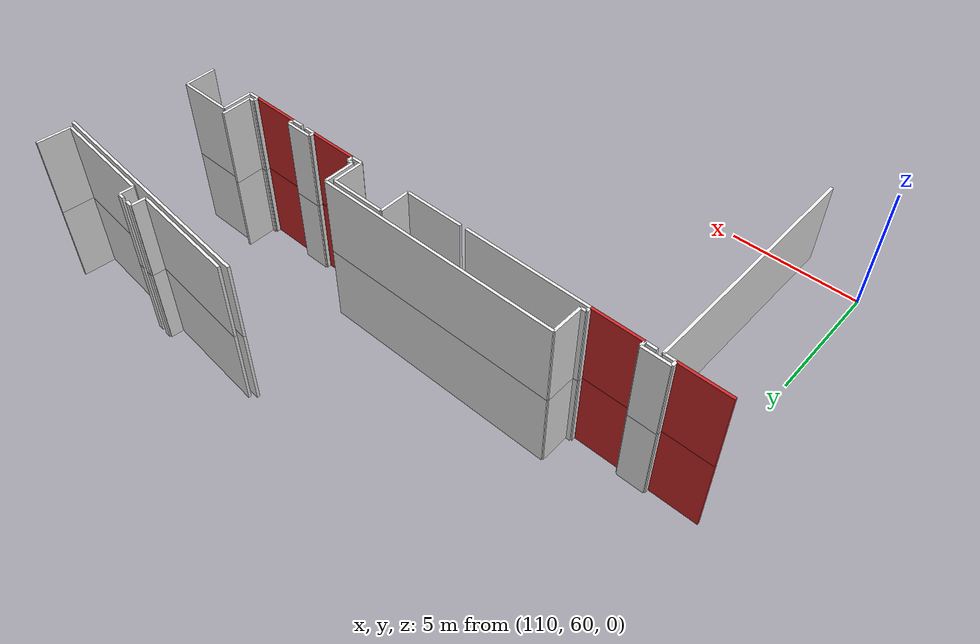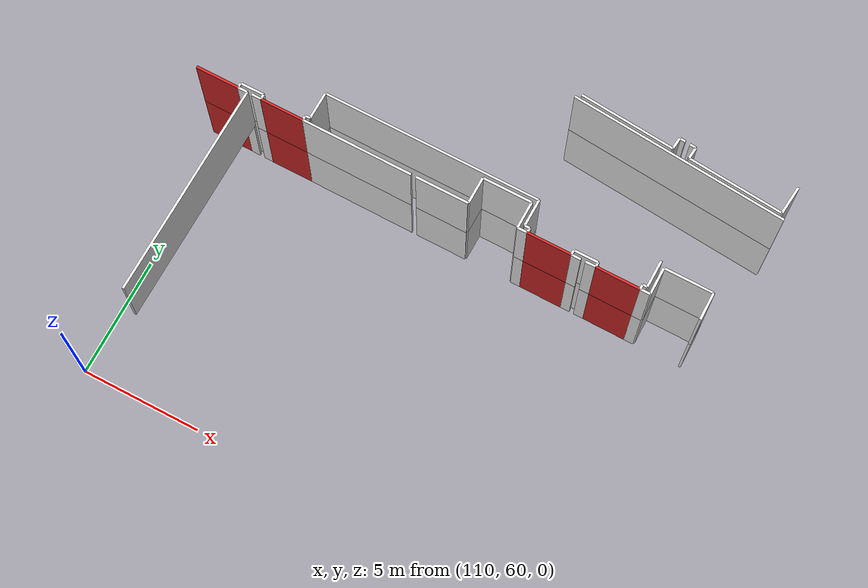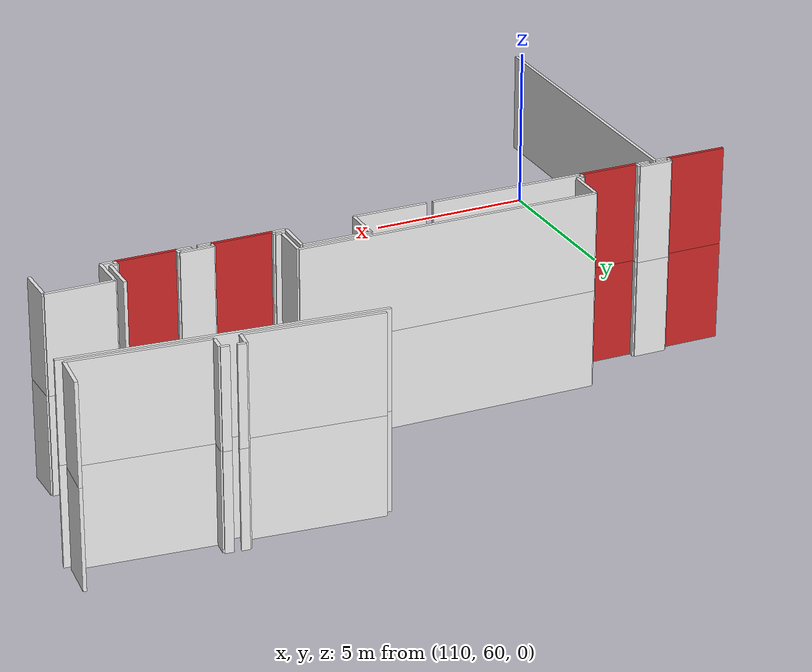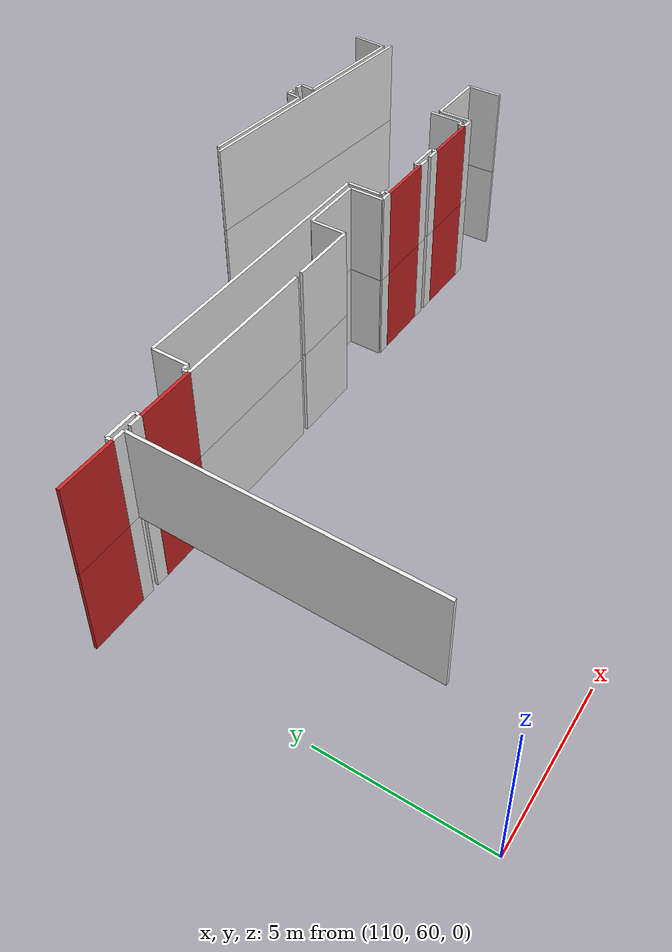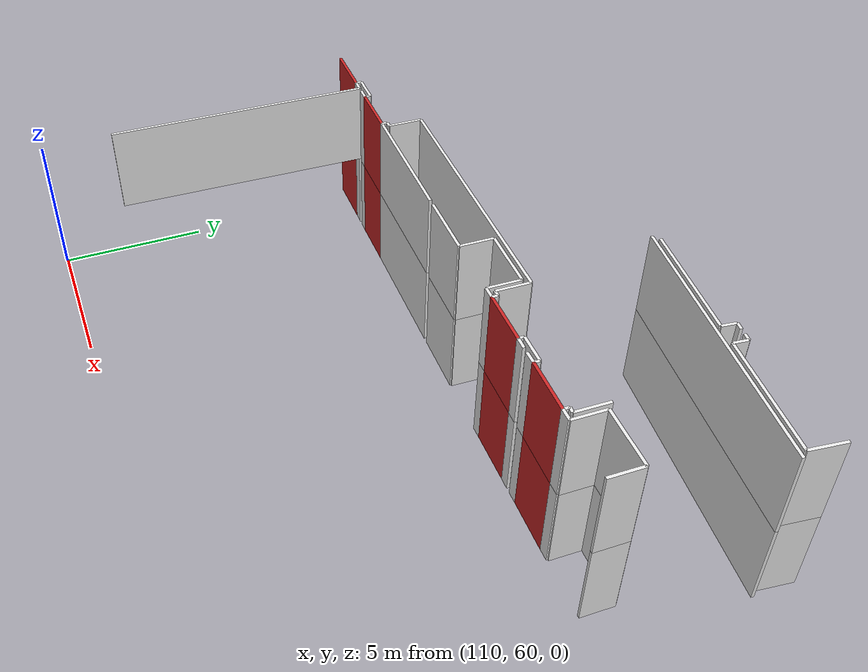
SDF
<sdf version="1.6">
 <world name="default">
  <model name="wall_127.1_71.0_1.5">
   <static>true</static>
   <pose>127.05000000001746 70.9550000000745 1.5 0 0 3.1249275297309125</pose>
   <link name="link">
    <visual name="visual">
     <geometry><box><size>1.8002499826340055 0.1 3</size></box></geometry>
     <material>
      <script><uri>file://media/materials/scripts/gazebo.material</uri><name>Gazebo/Red</name></script>
     </material>
    </visual>
    <collision name="collision"><geometry><box><size>1.8002499826340055 0.1 3</size></box></geometry></collision>
   </link>
  </model>
  <model name="wall_124.3_71.0_1.5">
   <static>true</static>
   <pose>124.26499999998487 70.98999999999069 1.5 0 0 3.1305433795001205</pose>
   <link name="link">
    <visual name="visual">
     <geometry><box><size>1.810110493862824 0.1 3</size></box></geometry>
     <material>
      <script><uri>file://media/materials/scripts/gazebo.material</uri><name>Gazebo/Red</name></script>
     </material>
    </visual>
    <collision name="collision"><geometry><box><size>1.810110493862824 0.1 3</size></box></geometry></collision>
   </link>
  </model>
  <model name="wall_113.0_71.1_1.5">
   <static>true</static>
   <pose>113.03500000000349 71.13000000012107 1.5 0 0 3.1305433795001205</pose>
   <link name="link">
    <visual name="visual">
     <geometry><box><size>1.810110493862824 0.1 3</size></box></geometry>
     <material>
      <script><uri>file://media/materials/scripts/gazebo.material</uri><name>Gazebo/Red</name></script>
     </material>
    </visual>
    <collision name="collision"><geometry><box><size>1.810110493862824 0.1 3</size></box></geometry></collision>
   </link>
  </model>
  <model name="wall_110.2_71.2_1.5">
   <static>true</static>
   <pose>110.23500000001513 71.17000000015832 1.5 0 0 3.1305433795001205</pose>
   <link name="link">
    <visual name="visual">
     <geometry><box><size>1.810110493862824 0.1 3</size></box></geometry>
     <material>
      <script><uri>file://media/materials/scripts/gazebo.material</uri><name>Gazebo/Red</name></script>
     </material>
    </visual>
    <collision name="collision"><geometry><box><size>1.810110493862824 0.1 3</size></box></geometry></collision>
   </link>
  </model>
  <model name="wall_127.1_71.0_4.5">
   <static>true</static>
   <pose>127.05000000001746 70.9550000000745 4.5 0 0 3.1249275297309125</pose>
   <link name="link">
    <visual name="visual">
     <geometry><box><size>1.8002499826340055 0.1 3</size></box></geometry>
     <material>
      <script><uri>file://media/materials/scripts/gazebo.material</uri><name>Gazebo/Red</name></script>
     </material>
    </visual>
    <collision name="collision"><geometry><box><size>1.8002499826340055 0.1 3</size></box></geometry></collision>
   </link>
  </model>
  <model name="wall_124.3_71.0_4.5">
   <static>true</static>
   <pose>124.26499999998487 70.98999999999069 4.5 0 0 3.1305433795001205</pose>
   <link name="link">
    <visual name="visual">
     <geometry><box><size>1.810110493862824 0.1 3</size></box></geometry>
     <material>
      <script><uri>file://media/materials/scripts/gazebo.material</uri><name>Gazebo/Red</name></script>
     </material>
    </visual>
    <collision name="collision"><geometry><box><size>1.810110493862824 0.1 3</size></box></geometry></collision>
   </link>
  </model>
  <model name="wall_113.0_71.1_4.5">
   <static>true</static>
   <pose>113.03500000000349 71.13000000012107 4.5 0 0 3.1305433795001205</pose>
   <link name="link">
    <visual name="visual">
     <geometry><box><size>1.810110493862824 0.1 3</size></box></geometry>
     <material>
      <script><uri>file://media/materials/scripts/gazebo.material</uri><name>Gazebo/Red</name></script>
     </material>
    </visual>
    <collision name="collision"><geometry><box><size>1.810110493862824 0.1 3</size></box></geometry></collision>
   </link>
  </model>
  <model name="wall_110.2_71.2_4.5">
   <static>true</static>
   <pose>110.23500000001513 71.17000000015832 4.5 0 0 3.1305433795001205</pose>
   <link name="link">
    <visual name="visual">
     <geometry><box><size>1.810110493862824 0.1 3</size></box></geometry>
     <material>
      <script><uri>file://media/materials/scripts/gazebo.material</uri><name>Gazebo/Red</name></script>
     </material>
    </visual>
    <collision name="collision"><geometry><box><size>1.810110493862824 0.1 3</size></box></geometry></collision>
   </link>
  </model>
  <model name="wall_127.3_76.9_1.5">
   <static>true</static>
   <pose>127.27500000002328 76.90500000002794 1.5 0 0 -0.11942892521040878</pose>
   <link name="link">
    <visual name="visual">
     <geometry><box><size>0.2517935662158716 0.1 3</size></box></geometry>
     <material>
      <script><uri>file://media/materials/scripts/gazebo.material</uri><name>Gazebo/White</name></script>
     </material>
    </visual>
    <collision name="collision"><geometry><box><size>0.2517935662158716 0.1 3</size></box></geometry></collision>
   </link>
  </model>
  <model name="wall_127.4_76.6_1.5">
   <static>true</static>
   <pose>127.375 76.64500000001863 1.5 0 0 -1.6724851786059602</pose>
   <link name="link">
    <visual name="visual">
     <geometry><box><size>0.4925444144680799 0.1 3</size></box></geometry>
     <material>
      <script><uri>file://media/materials/scripts/gazebo.material</uri><name>Gazebo/White</name></script>
     </material>
    </visual>
    <collision name="collision"><geometry><box><size>0.4925444144680799 0.1 3</size></box></geometry></collision>
   </link>
  </model>
  <model name="wall_129.3_76.2_1.5">
   <static>true</static>
   <pose>129.31500000000233 76.19999999995343 1.5 0 0 -0.10143187482049365</pose>
   <link name="link">
    <visual name="visual">
     <geometry><box><size>3.9503037858281362 0.1 3</size></box></geometry>
     <material>
      <script><uri>file://media/materials/scripts/gazebo.material</uri><name>Gazebo/White</name></script>
     </material>
    </visual>
    <collision name="collision"><geometry><box><size>3.9503037858281362 0.1 3</size></box></geometry></collision>
   </link>
  </model>
  <model name="wall_131.3_76.6_1.5">
   <static>true</static>
   <pose>131.34500000000116 76.60000000009313 1.5 0 0 1.4628838380389488</pose>
   <link name="link">
    <visual name="visual">
     <geometry><box><size>1.2070211267550837 0.1 3</size></box></geometry>
     <material>
      <script><uri>file://media/materials/scripts/gazebo.material</uri><name>Gazebo/White</name></script>
     </material>
    </visual>
    <collision name="collision"><geometry><box><size>1.2070211267550837 0.1 3</size></box></geometry></collision>
   </link>
  </model>
  <model name="wall_124.7_76.7_1.5">
   <static>true</static>
   <pose>124.68000000002212 76.67000000015832 1.5 0 0 -0.10117618901410476</pose>
   <link name="link">
    <visual name="visual">
     <geometry><box><size>3.9602525171943066 0.1 3</size></box></geometry>
     <material>
      <script><uri>file://media/materials/scripts/gazebo.material</uri><name>Gazebo/White</name></script>
     </material>
    </visual>
    <collision name="collision"><geometry><box><size>3.9602525171943066 0.1 3</size></box></geometry></collision>
   </link>
  </model>
  <model name="wall_126.7_76.7_1.5">
   <static>true</static>
   <pose>126.68000000002212 76.72000000020489 1.5 0 0 1.4513674007811488</pose>
   <link name="link">
    <visual name="visual">
     <geometry><box><size>0.5035871324802894 0.1 3</size></box></geometry>
     <material>
      <script><uri>file://media/materials/scripts/gazebo.material</uri><name>Gazebo/White</name></script>
     </material>
    </visual>
    <collision name="collision"><geometry><box><size>0.5035871324802894 0.1 3</size></box></geometry></collision>
   </link>
  </model>
  <model name="wall_126.8_77.0_1.5">
   <static>true</static>
   <pose>126.8300000000163 76.9550000000745 1.5 0 0 -0.1243549956213644</pose>
   <link name="link">
    <visual name="visual">
     <geometry><box><size>0.24186773247205975 0.1 3</size></box></geometry>
     <material>
      <script><uri>file://media/materials/scripts/gazebo.material</uri><name>Gazebo/White</name></script>
     </material>
    </visual>
    <collision name="collision"><geometry><box><size>0.24186773247205975 0.1 3</size></box></geometry></collision>
   </link>
  </model>
  <model name="wall_127.0_76.2_1.5">
   <static>true</static>
   <pose>126.98499999998603 76.23999999999069 1.5 0 0 3.0415928752928885</pose>
   <link name="link">
    <visual name="visual">
     <geometry><box><size>9.01503743748916 0.1 3</size></box></geometry>
     <material>
      <script><uri>file://media/materials/scripts/gazebo.material</uri><name>Gazebo/White</name></script>
     </material>
    </visual>
    <collision name="collision"><geometry><box><size>9.01503743748916 0.1 3</size></box></geometry></collision>
   </link>
  </model>
  <model name="wall_111.1_71.3_1.5">
   <static>true</static>
   <pose>111.14000000001397 71.25500000012107 1.5 0 0 1.5707963267948966</pose>
   <link name="link">
    <visual name="visual">
     <geometry><box><size>0.18999999994412065 0.1 3</size></box></geometry>
     <material>
      <script><uri>file://media/materials/scripts/gazebo.material</uri><name>Gazebo/White</name></script>
     </material>
    </visual>
    <collision name="collision"><geometry><box><size>0.18999999994412065 0.1 3</size></box></geometry></collision>
   </link>
  </model>
  <model name="wall_111.6_71.3_1.5">
   <static>true</static>
   <pose>111.64000000001397 71.34499999997206 1.5 0 0 -0.009999666928784895</pose>
   <link name="link">
    <visual name="visual">
     <geometry><box><size>1.0000499987524838 0.1 3</size></box></geometry>
     <material>
      <script><uri>file://media/materials/scripts/gazebo.material</uri><name>Gazebo/White</name></script>
     </material>
    </visual>
    <collision name="collision"><geometry><box><size>1.0000499987524838 0.1 3</size></box></geometry></collision>
   </link>
  </model>
  <model name="wall_112.1_71.2_1.5">
   <static>true</static>
   <pose>112.13500000000931 71.23999999999069 1.5 0 0 -1.6207547226329644</pose>
   <link name="link">
    <visual name="visual">
     <geometry><box><size>0.20024984366642476 0.1 3</size></box></geometry>
     <material>
      <script><uri>file://media/materials/scripts/gazebo.material</uri><name>Gazebo/White</name></script>
     </material>
    </visual>
    <collision name="collision"><geometry><box><size>0.20024984366642476 0.1 3</size></box></geometry></collision>
   </link>
  </model>
  <model name="wall_113.9_71.2_1.5">
   <static>true</static>
   <pose>113.94000000000233 71.21500000008382 1.5 0 0 1.5707963267948966</pose>
   <link name="link">
    <visual name="visual">
     <geometry><box><size>0.18999999994412065 0.1 3</size></box></geometry>
     <material>
      <script><uri>file://media/materials/scripts/gazebo.material</uri><name>Gazebo/White</name></script>
     </material>
    </visual>
    <collision name="collision"><geometry><box><size>0.18999999994412065 0.1 3</size></box></geometry></collision>
   </link>
  </model>
  <model name="wall_114.0_71.3_1.5">
   <static>true</static>
   <pose>114.04000000000815 71.31000000005588 1.5 0 0 0.0</pose>
   <link name="link">
    <visual name="visual">
     <geometry><box><size>0.20000000001164153 0.1 3</size></box></geometry>
     <material>
      <script><uri>file://media/materials/scripts/gazebo.material</uri><name>Gazebo/White</name></script>
     </material>
    </visual>
    <collision name="collision"><geometry><box><size>0.20000000001164153 0.1 3</size></box></geometry></collision>
   </link>
  </model>
  <model name="wall_114.1_71.9_1.5">
   <static>true</static>
   <pose>114.14999999999418 71.88500000000931 1.5 0 0 1.553406775538566</pose>
   <link name="link">
    <visual name="visual">
     <geometry><box><size>1.1501738998013356 0.1 3</size></box></geometry>
     <material>
      <script><uri>file://media/materials/scripts/gazebo.material</uri><name>Gazebo/White</name></script>
     </material>
    </visual>
    <collision name="collision"><geometry><box><size>1.1501738998013356 0.1 3</size></box></geometry></collision>
   </link>
  </model>
  <model name="wall_118.7_72.4_1.5">
   <static>true</static>
   <pose>118.6699999999837 72.39500000001863 1.5 0 0 -0.01441141905839594</pose>
   <link name="link">
    <visual name="visual">
     <geometry><box><size>9.020936758469542 0.1 3</size></box></geometry>
     <material>
      <script><uri>file://media/materials/scripts/gazebo.material</uri><name>Gazebo/White</name></script>
     </material>
    </visual>
    <collision name="collision"><geometry><box><size>9.020936758469542 0.1 3</size></box></geometry></collision>
   </link>
  </model>
  <model name="wall_123.2_71.8_1.5">
   <static>true</static>
   <pose>123.1699999999837 71.76000000000931 1.5 0 0 -1.5883383868666272</pose>
   <link name="link">
    <visual name="visual">
     <geometry><box><size>1.1401754252298297 0.1 3</size></box></geometry>
     <material>
      <script><uri>file://media/materials/scripts/gazebo.material</uri><name>Gazebo/White</name></script>
     </material>
    </visual>
    <collision name="collision"><geometry><box><size>1.1401754252298297 0.1 3</size></box></geometry></collision>
   </link>
  </model>
  <model name="wall_123.3_71.2_1.5">
   <static>true</static>
   <pose>123.26499999998487 71.18999999994412 1.5 0 0 0.0</pose>
   <link name="link">
    <visual name="visual">
     <geometry><box><size>0.21000000002095476 0.1 3</size></box></geometry>
     <material>
      <script><uri>file://media/materials/scripts/gazebo.material</uri><name>Gazebo/White</name></script>
     </material>
    </visual>
    <collision name="collision"><geometry><box><size>0.21000000002095476 0.1 3</size></box></geometry></collision>
   </link>
  </model>
  <model name="wall_123.4_71.1_1.5">
   <static>true</static>
   <pose>123.36499999999069 71.09499999997206 1.5 0 0 -1.6233793884701562</pose>
   <link name="link">
    <visual name="visual">
     <geometry><box><size>0.19026297584909185 0.1 3</size></box></geometry>
     <material>
      <script><uri>file://media/materials/scripts/gazebo.material</uri><name>Gazebo/White</name></script>
     </material>
    </visual>
    <collision name="collision"><geometry><box><size>0.19026297584909185 0.1 3</size></box></geometry></collision>
   </link>
  </model>
  <model name="wall_125.2_71.1_1.5">
   <static>true</static>
   <pose>125.1699999999837 71.07499999995343 1.5 0 0 1.5707963267948966</pose>
   <link name="link">
    <visual name="visual">
     <geometry><box><size>0.18999999994412065 0.1 3</size></box></geometry>
     <material>
      <script><uri>file://media/materials/scripts/gazebo.material</uri><name>Gazebo/White</name></script>
     </material>
    </visual>
    <collision name="collision"><geometry><box><size>0.18999999994412065 0.1 3</size></box></geometry></collision>
   </link>
  </model>
  <model name="wall_125.7_71.2_1.5">
   <static>true</static>
   <pose>125.66499999997905 71.16500000003725 1.5 0 0 -0.010100666359664784</pose>
   <link name="link">
    <visual name="visual">
     <geometry><box><size>0.9900505037507377 0.1 3</size></box></geometry>
     <material>
      <script><uri>file://media/materials/scripts/gazebo.material</uri><name>Gazebo/White</name></script>
     </material>
    </visual>
    <collision name="collision"><geometry><box><size>0.9900505037507377 0.1 3</size></box></geometry></collision>
   </link>
  </model>
  <model name="wall_126.2_71.1_1.5">
   <static>true</static>
   <pose>126.15499999999884 71.06500000017695 1.5 0 0 -1.6233793881646463</pose>
   <link name="link">
    <visual name="visual">
     <geometry><box><size>0.19026297584603252 0.1 3</size></box></geometry>
     <material>
      <script><uri>file://media/materials/scripts/gazebo.material</uri><name>Gazebo/White</name></script>
     </material>
    </visual>
    <collision name="collision"><geometry><box><size>0.19026297584603252 0.1 3</size></box></geometry></collision>
   </link>
  </model>
  <model name="wall_128.0_71.0_1.5">
   <static>true</static>
   <pose>127.95000000001164 71.04000000003725 1.5 0 0 1.5707963267948966</pose>
   <link name="link">
    <visual name="visual">
     <geometry><box><size>0.20000000018626451 0.1 3</size></box></geometry>
     <material>
      <script><uri>file://media/materials/scripts/gazebo.material</uri><name>Gazebo/White</name></script>
     </material>
    </visual>
    <collision name="collision"><geometry><box><size>0.20000000018626451 0.1 3</size></box></geometry></collision>
   </link>
  </model>
  <model name="wall_128.0_71.1_1.5">
   <static>true</static>
   <pose>128.0450000000128 71.13500000000931 1.5 0 0 -0.0525830628812194</pose>
   <link name="link">
    <visual name="visual">
     <geometry><box><size>0.19026297591945637 0.1 3</size></box></geometry>
     <material>
      <script><uri>file://media/materials/scripts/gazebo.material</uri><name>Gazebo/White</name></script>
     </material>
    </visual>
    <collision name="collision"><geometry><box><size>0.19026297591945637 0.1 3</size></box></geometry></collision>
   </link>
  </model>
  <model name="wall_128.1_71.7_1.5">
   <static>true</static>
   <pose>128.14999999999418 71.69999999995343 1.5 0 0 1.5532542667742097</pose>
   <link name="link">
    <visual name="visual">
     <geometry><box><size>1.1401754252288088 0.1 3</size></box></geometry>
     <material>
      <script><uri>file://media/materials/scripts/gazebo.material</uri><name>Gazebo/White</name></script>
     </material>
    </visual>
    <collision name="collision"><geometry><box><size>1.1401754252288088 0.1 3</size></box></geometry></collision>
   </link>
  </model>
  <model name="wall_116.2_71.1_1.5">
   <static>true</static>
   <pose>116.23999999999069 71.08499999996275 1.5 0 0 3.1263764366827713</pose>
   <link name="link">
    <visual name="visual">
     <geometry><box><size>4.60053257784656 0.1 3</size></box></geometry>
     <material>
      <script><uri>file://media/materials/scripts/gazebo.material</uri><name>Gazebo/White</name></script>
     </material>
    </visual>
    <collision name="collision"><geometry><box><size>4.60053257784656 0.1 3</size></box></geometry></collision>
   </link>
  </model>
  <model name="wall_111.9_71.1_1.5">
   <static>true</static>
   <pose>111.92999999999302 71.14500000001863 1.5 0 0 3.116597860530772</pose>
   <link name="link">
    <visual name="visual">
     <geometry><box><size>0.40012498049254075 0.1 3</size></box></geometry>
     <material>
      <script><uri>file://media/materials/scripts/gazebo.material</uri><name>Gazebo/White</name></script>
     </material>
    </visual>
    <collision name="collision"><geometry><box><size>0.40012498049254075 0.1 3</size></box></geometry></collision>
   </link>
  </model>
  <model name="wall_125.4_71.0_1.5">
   <static>true</static>
   <pose>125.36499999999069 70.97500000009313 1.5 0 0 3.115957245641779</pose>
   <link name="link">
    <visual name="visual">
     <geometry><box><size>0.3901281840708591 0.1 3</size></box></geometry>
     <material>
      <script><uri>file://media/materials/scripts/gazebo.material</uri><name>Gazebo/White</name></script>
     </material>
    </visual>
    <collision name="collision"><geometry><box><size>0.3901281840708591 0.1 3</size></box></geometry></collision>
   </link>
  </model>
  <model name="wall_123.2_71.0_1.5">
   <static>true</static>
   <pose>123.16000000000349 71.0 1.5 0 0 3.141592653589793</pose>
   <link name="link">
    <visual name="visual">
     <geometry><box><size>0.3999999999650754 0.1 3</size></box></geometry>
     <material>
      <script><uri>file://media/materials/scripts/gazebo.material</uri><name>Gazebo/White</name></script>
     </material>
    </visual>
    <collision name="collision"><geometry><box><size>0.3999999999650754 0.1 3</size></box></geometry></collision>
   </link>
  </model>
  <model name="wall_123.0_71.6_1.5">
   <static>true</static>
   <pose>122.97000000000116 71.56499999994412 1.5 0 0 1.553099059570393</pose>
   <link name="link">
    <visual name="visual">
     <geometry><box><size>1.130176977179168 0.1 3</size></box></geometry>
     <material>
      <script><uri>file://media/materials/scripts/gazebo.material</uri><name>Gazebo/White</name></script>
     </material>
    </visual>
    <collision name="collision"><geometry><box><size>1.130176977179168 0.1 3</size></box></geometry></collision>
   </link>
  </model>
  <model name="wall_122.0_72.1_1.5">
   <static>true</static>
   <pose>121.96499999999651 72.14500000001863 1.5 0 0 3.12681540405365</pose>
   <link name="link">
    <visual name="visual">
     <geometry><box><size>2.0302216627483705 0.1 3</size></box></geometry>
     <material>
      <script><uri>file://media/materials/scripts/gazebo.material</uri><name>Gazebo/White</name></script>
     </material>
    </visual>
    <collision name="collision"><geometry><box><size>2.0302216627483705 0.1 3</size></box></geometry></collision>
   </link>
  </model>
  <model name="wall_120.9_71.6_1.5">
   <static>true</static>
   <pose>120.94000000000233 71.59000000008382 1.5 0 0 -1.5883383868666272</pose>
   <link name="link">
    <visual name="visual">
     <geometry><box><size>1.1401754252298297 0.1 3</size></box></geometry>
     <material>
      <script><uri>file://media/materials/scripts/gazebo.material</uri><name>Gazebo/White</name></script>
     </material>
    </visual>
    <collision name="collision"><geometry><box><size>1.1401754252298297 0.1 3</size></box></geometry></collision>
   </link>
  </model>
  <model name="wall_119.8_71.0_1.5">
   <static>true</static>
   <pose>119.83999999999651 71.03499999991618 1.5 0 0 3.1278320544015297</pose>
   <link name="link">
    <visual name="visual">
     <geometry><box><size>2.1802064122365232 0.1 3</size></box></geometry>
     <material>
      <script><uri>file://media/materials/scripts/gazebo.material</uri><name>Gazebo/White</name></script>
     </material>
    </visual>
    <collision name="collision"><geometry><box><size>2.1802064122365232 0.1 3</size></box></geometry></collision>
   </link>
  </model>
  <model name="wall_130.4_71.5_1.5">
   <static>true</static>
   <pose>130.35499999998137 71.45999999996275 1.5 0 0 1.5620246219397054</pose>
   <link name="link">
    <visual name="visual">
     <geometry><box><size>1.1400438584702595 0.1 3</size></box></geometry>
     <material>
      <script><uri>file://media/materials/scripts/gazebo.material</uri><name>Gazebo/White</name></script>
     </material>
    </visual>
    <collision name="collision"><geometry><box><size>1.1400438584702595 0.1 3</size></box></geometry></collision>
   </link>
  </model>
  <model name="wall_129.4_72.0_1.5">
   <static>true</static>
   <pose>129.35999999998603 72.0449999999255 1.5 0 0 3.126593778307587</pose>
   <link name="link">
    <visual name="visual">
     <geometry><box><size>2.0002249873490845 0.1 3</size></box></geometry>
     <material>
      <script><uri>file://media/materials/scripts/gazebo.material</uri><name>Gazebo/White</name></script>
     </material>
    </visual>
    <collision name="collision"><geometry><box><size>2.0002249873490845 0.1 3</size></box></geometry></collision>
   </link>
  </model>
  <model name="wall_128.4_71.5_1.5">
   <static>true</static>
   <pose>128.35499999998137 71.5 1.5 0 0 -1.5797246609821571</pose>
   <link name="link">
    <visual name="visual">
     <geometry><box><size>1.1200446420792904 0.1 3</size></box></geometry>
     <material>
      <script><uri>file://media/materials/scripts/gazebo.material</uri><name>Gazebo/White</name></script>
     </material>
    </visual>
    <collision name="collision"><geometry><box><size>1.1200446420792904 0.1 3</size></box></geometry></collision>
   </link>
  </model>
  <model name="wall_128.1_70.9_1.5">
   <static>true</static>
   <pose>128.14999999999418 70.93999999994412 1.5 0 0 3.141592653589793</pose>
   <link name="link">
    <visual name="visual">
     <geometry><box><size>0.3999999999650754 0.1 3</size></box></geometry>
     <material>
      <script><uri>file://media/materials/scripts/gazebo.material</uri><name>Gazebo/White</name></script>
     </material>
    </visual>
    <collision name="collision"><geometry><box><size>0.3999999999650754 0.1 3</size></box></geometry></collision>
   </link>
  </model>
  <model name="wall_125.9_71.0_1.5">
   <static>true</static>
   <pose>125.94500000000698 70.97000000020489 1.5 0 0 3.141592653589793</pose>
   <link name="link">
    <visual name="visual">
     <geometry><box><size>0.4100000000325963 0.1 3</size></box></geometry>
     <material>
      <script><uri>file://media/materials/scripts/gazebo.material</uri><name>Gazebo/White</name></script>
     </material>
    </visual>
    <collision name="collision"><geometry><box><size>0.4100000000325963 0.1 3</size></box></geometry></collision>
   </link>
  </model>
  <model name="wall_111.3_71.2_1.5">
   <static>true</static>
   <pose>111.33999999999651 71.15500000002794 1.5 0 0 3.11659785936371</pose>
   <link name="link">
    <visual name="visual">
     <geometry><box><size>0.40012498044598915 0.1 3</size></box></geometry>
     <material>
      <script><uri>file://media/materials/scripts/gazebo.material</uri><name>Gazebo/White</name></script>
     </material>
    </visual>
    <collision name="collision"><geometry><box><size>0.40012498044598915 0.1 3</size></box></geometry></collision>
   </link>
  </model>
  <model name="wall_127.3_76.9_4.5">
   <static>true</static>
   <pose>127.27500000002328 76.90500000002794 4.5 0 0 -0.11942892521040878</pose>
   <link name="link">
    <visual name="visual">
     <geometry><box><size>0.2517935662158716 0.1 3</size></box></geometry>
     <material>
      <script><uri>file://media/materials/scripts/gazebo.material</uri><name>Gazebo/White</name></script>
     </material>
    </visual>
    <collision name="collision"><geometry><box><size>0.2517935662158716 0.1 3</size></box></geometry></collision>
   </link>
  </model>
  <model name="wall_127.4_76.6_4.5">
   <static>true</static>
   <pose>127.375 76.64500000001863 4.5 0 0 -1.6724851786059602</pose>
   <link name="link">
    <visual name="visual">
     <geometry><box><size>0.4925444144680799 0.1 3</size></box></geometry>
     <material>
      <script><uri>file://media/materials/scripts/gazebo.material</uri><name>Gazebo/White</name></script>
     </material>
    </visual>
    <collision name="collision"><geometry><box><size>0.4925444144680799 0.1 3</size></box></geometry></collision>
   </link>
  </model>
  <model name="wall_129.3_76.2_4.5">
   <static>true</static>
   <pose>129.31500000000233 76.19999999995343 4.5 0 0 -0.10143187482049365</pose>
   <link name="link">
    <visual name="visual">
     <geometry><box><size>3.9503037858281362 0.1 3</size></box></geometry>
     <material>
      <script><uri>file://media/materials/scripts/gazebo.material</uri><name>Gazebo/White</name></script>
     </material>
    </visual>
    <collision name="collision"><geometry><box><size>3.9503037858281362 0.1 3</size></box></geometry></collision>
   </link>
  </model>
  <model name="wall_131.3_76.6_4.5">
   <static>true</static>
   <pose>131.34500000000116 76.60000000009313 4.5 0 0 1.4628838380389488</pose>
   <link name="link">
    <visual name="visual">
     <geometry><box><size>1.2070211267550837 0.1 3</size></box></geometry>
     <material>
      <script><uri>file://media/materials/scripts/gazebo.material</uri><name>Gazebo/White</name></script>
     </material>
    </visual>
    <collision name="collision"><geometry><box><size>1.2070211267550837 0.1 3</size></box></geometry></collision>
   </link>
  </model>
  <model name="wall_124.7_76.7_4.5">
   <static>true</static>
   <pose>124.68000000002212 76.67000000015832 4.5 0 0 -0.10117618901410476</pose>
   <link name="link">
    <visual name="visual">
     <geometry><box><size>3.9602525171943066 0.1 3</size></box></geometry>
     <material>
      <script><uri>file://media/materials/scripts/gazebo.material</uri><name>Gazebo/White</name></script>
     </material>
    </visual>
    <collision name="collision"><geometry><box><size>3.9602525171943066 0.1 3</size></box></geometry></collision>
   </link>
  </model>
  <model name="wall_126.7_76.7_4.5">
   <static>true</static>
   <pose>126.68000000002212 76.72000000020489 4.5 0 0 1.4513674007811488</pose>
   <link name="link">
    <visual name="visual">
     <geometry><box><size>0.5035871324802894 0.1 3</size></box></geometry>
     <material>
      <script><uri>file://media/materials/scripts/gazebo.material</uri><name>Gazebo/White</name></script>
     </material>
    </visual>
    <collision name="collision"><geometry><box><size>0.5035871324802894 0.1 3</size></box></geometry></collision>
   </link>
  </model>
  <model name="wall_126.8_77.0_4.5">
   <static>true</static>
   <pose>126.8300000000163 76.9550000000745 4.5 0 0 -0.1243549956213644</pose>
   <link name="link">
    <visual name="visual">
     <geometry><box><size>0.24186773247205975 0.1 3</size></box></geometry>
     <material>
      <script><uri>file://media/materials/scripts/gazebo.material</uri><name>Gazebo/White</name></script>
     </material>
    </visual>
    <collision name="collision"><geometry><box><size>0.24186773247205975 0.1 3</size></box></geometry></collision>
   </link>
  </model>
  <model name="wall_127.0_76.2_4.5">
   <static>true</static>
   <pose>126.98499999998603 76.23999999999069 4.5 0 0 3.0415928752928885</pose>
   <link name="link">
    <visual name="visual">
     <geometry><box><size>9.01503743748916 0.1 3</size></box></geometry>
     <material>
      <script><uri>file://media/materials/scripts/gazebo.material</uri><name>Gazebo/White</name></script>
     </material>
    </visual>
    <collision name="collision"><geometry><box><size>9.01503743748916 0.1 3</size></box></geometry></collision>
   </link>
  </model>
  <model name="wall_111.1_71.3_4.5">
   <static>true</static>
   <pose>111.14000000001397 71.25500000012107 4.5 0 0 1.5707963267948966</pose>
   <link name="link">
    <visual name="visual">
     <geometry><box><size>0.18999999994412065 0.1 3</size></box></geometry>
     <material>
      <script><uri>file://media/materials/scripts/gazebo.material</uri><name>Gazebo/White</name></script>
     </material>
    </visual>
    <collision name="collision"><geometry><box><size>0.18999999994412065 0.1 3</size></box></geometry></collision>
   </link>
  </model>
  <model name="wall_111.6_71.3_4.5">
   <static>true</static>
   <pose>111.64000000001397 71.34499999997206 4.5 0 0 -0.009999666928784895</pose>
   <link name="link">
    <visual name="visual">
     <geometry><box><size>1.0000499987524838 0.1 3</size></box></geometry>
     <material>
      <script><uri>file://media/materials/scripts/gazebo.material</uri><name>Gazebo/White</name></script>
     </material>
    </visual>
    <collision name="collision"><geometry><box><size>1.0000499987524838 0.1 3</size></box></geometry></collision>
   </link>
  </model>
  <model name="wall_112.1_71.2_4.5">
   <static>true</static>
   <pose>112.13500000000931 71.23999999999069 4.5 0 0 -1.6207547226329644</pose>
   <link name="link">
    <visual name="visual">
     <geometry><box><size>0.20024984366642476 0.1 3</size></box></geometry>
     <material>
      <script><uri>file://media/materials/scripts/gazebo.material</uri><name>Gazebo/White</name></script>
     </material>
    </visual>
    <collision name="collision"><geometry><box><size>0.20024984366642476 0.1 3</size></box></geometry></collision>
   </link>
  </model>
  <model name="wall_113.9_71.2_4.5">
   <static>true</static>
   <pose>113.94000000000233 71.21500000008382 4.5 0 0 1.5707963267948966</pose>
   <link name="link">
    <visual name="visual">
     <geometry><box><size>0.18999999994412065 0.1 3</size></box></geometry>
     <material>
      <script><uri>file://media/materials/scripts/gazebo.material</uri><name>Gazebo/White</name></script>
     </material>
    </visual>
    <collision name="collision"><geometry><box><size>0.18999999994412065 0.1 3</size></box></geometry></collision>
   </link>
  </model>
  <model name="wall_114.0_71.3_4.5">
   <static>true</static>
   <pose>114.04000000000815 71.31000000005588 4.5 0 0 0.0</pose>
   <link name="link">
    <visual name="visual">
     <geometry><box><size>0.20000000001164153 0.1 3</size></box></geometry>
     <material>
      <script><uri>file://media/materials/scripts/gazebo.material</uri><name>Gazebo/White</name></script>
     </material>
    </visual>
    <collision name="collision"><geometry><box><size>0.20000000001164153 0.1 3</size></box></geometry></collision>
   </link>
  </model>
  <model name="wall_114.1_71.9_4.5">
   <static>true</static>
   <pose>114.14999999999418 71.88500000000931 4.5 0 0 1.553406775538566</pose>
   <link name="link">
    <visual name="visual">
     <geometry><box><size>1.1501738998013356 0.1 3</size></box></geometry>
     <material>
      <script><uri>file://media/materials/scripts/gazebo.material</uri><name>Gazebo/White</name></script>
     </material>
    </visual>
    <collision name="collision"><geometry><box><size>1.1501738998013356 0.1 3</size></box></geometry></collision>
   </link>
  </model>
  <model name="wall_118.7_72.4_4.5">
   <static>true</static>
   <pose>118.6699999999837 72.39500000001863 4.5 0 0 -0.01441141905839594</pose>
   <link name="link">
    <visual name="visual">
     <geometry><box><size>9.020936758469542 0.1 3</size></box></geometry>
     <material>
      <script><uri>file://media/materials/scripts/gazebo.material</uri><name>Gazebo/White</name></script>
     </material>
    </visual>
    <collision name="collision"><geometry><box><size>9.020936758469542 0.1 3</size></box></geometry></collision>
   </link>
  </model>
  <model name="wall_123.2_71.8_4.5">
   <static>true</static>
   <pose>123.1699999999837 71.76000000000931 4.5 0 0 -1.5883383868666272</pose>
   <link name="link">
    <visual name="visual">
     <geometry><box><size>1.1401754252298297 0.1 3</size></box></geometry>
     <material>
      <script><uri>file://media/materials/scripts/gazebo.material</uri><name>Gazebo/White</name></script>
     </material>
    </visual>
    <collision name="collision"><geometry><box><size>1.1401754252298297 0.1 3</size></box></geometry></collision>
   </link>
  </model>
  <model name="wall_123.3_71.2_4.5">
   <static>true</static>
   <pose>123.26499999998487 71.18999999994412 4.5 0 0 0.0</pose>
   <link name="link">
    <visual name="visual">
     <geometry><box><size>0.21000000002095476 0.1 3</size></box></geometry>
     <material>
      <script><uri>file://media/materials/scripts/gazebo.material</uri><name>Gazebo/White</name></script>
     </material>
    </visual>
    <collision name="collision"><geometry><box><size>0.21000000002095476 0.1 3</size></box></geometry></collision>
   </link>
  </model>
  <model name="wall_123.4_71.1_4.5">
   <static>true</static>
   <pose>123.36499999999069 71.09499999997206 4.5 0 0 -1.6233793884701562</pose>
   <link name="link">
    <visual name="visual">
     <geometry><box><size>0.19026297584909185 0.1 3</size></box></geometry>
     <material>
      <script><uri>file://media/materials/scripts/gazebo.material</uri><name>Gazebo/White</name></script>
     </material>
    </visual>
    <collision name="collision"><geometry><box><size>0.19026297584909185 0.1 3</size></box></geometry></collision>
   </link>
  </model>
  <model name="wall_125.2_71.1_4.5">
   <static>true</static>
   <pose>125.1699999999837 71.07499999995343 4.5 0 0 1.5707963267948966</pose>
   <link name="link">
    <visual name="visual">
     <geometry><box><size>0.18999999994412065 0.1 3</size></box></geometry>
     <material>
      <script><uri>file://media/materials/scripts/gazebo.material</uri><name>Gazebo/White</name></script>
     </material>
    </visual>
    <collision name="collision"><geometry><box><size>0.18999999994412065 0.1 3</size></box></geometry></collision>
   </link>
  </model>
  <model name="wall_125.7_71.2_4.5">
   <static>true</static>
   <pose>125.66499999997905 71.16500000003725 4.5 0 0 -0.010100666359664784</pose>
   <link name="link">
    <visual name="visual">
     <geometry><box><size>0.9900505037507377 0.1 3</size></box></geometry>
     <material>
      <script><uri>file://media/materials/scripts/gazebo.material</uri><name>Gazebo/White</name></script>
     </material>
    </visual>
    <collision name="collision"><geometry><box><size>0.9900505037507377 0.1 3</size></box></geometry></collision>
   </link>
  </model>
  <model name="wall_126.2_71.1_4.5">
   <static>true</static>
   <pose>126.15499999999884 71.06500000017695 4.5 0 0 -1.6233793881646463</pose>
   <link name="link">
    <visual name="visual">
     <geometry><box><size>0.19026297584603252 0.1 3</size></box></geometry>
     <material>
      <script><uri>file://media/materials/scripts/gazebo.material</uri><name>Gazebo/White</name></script>
     </material>
    </visual>
    <collision name="collision"><geometry><box><size>0.19026297584603252 0.1 3</size></box></geometry></collision>
   </link>
  </model>
  <model name="wall_128.0_71.0_4.5">
   <static>true</static>
   <pose>127.95000000001164 71.04000000003725 4.5 0 0 1.5707963267948966</pose>
   <link name="link">
    <visual name="visual">
     <geometry><box><size>0.20000000018626451 0.1 3</size></box></geometry>
     <material>
      <script><uri>file://media/materials/scripts/gazebo.material</uri><name>Gazebo/White</name></script>
     </material>
    </visual>
    <collision name="collision"><geometry><box><size>0.20000000018626451 0.1 3</size></box></geometry></collision>
   </link>
  </model>
  <model name="wall_128.0_71.1_4.5">
   <static>true</static>
   <pose>128.0450000000128 71.13500000000931 4.5 0 0 -0.0525830628812194</pose>
   <link name="link">
    <visual name="visual">
     <geometry><box><size>0.19026297591945637 0.1 3</size></box></geometry>
     <material>
      <script><uri>file://media/materials/scripts/gazebo.material</uri><name>Gazebo/White</name></script>
     </material>
    </visual>
    <collision name="collision"><geometry><box><size>0.19026297591945637 0.1 3</size></box></geometry></collision>
   </link>
  </model>
  <model name="wall_128.1_71.7_4.5">
   <static>true</static>
   <pose>128.14999999999418 71.69999999995343 4.5 0 0 1.5532542667742097</pose>
   <link name="link">
    <visual name="visual">
     <geometry><box><size>1.1401754252288088 0.1 3</size></box></geometry>
     <material>
      <script><uri>file://media/materials/scripts/gazebo.material</uri><name>Gazebo/White</name></script>
     </material>
    </visual>
    <collision name="collision"><geometry><box><size>1.1401754252288088 0.1 3</size></box></geometry></collision>
   </link>
  </model>
  <model name="wall_116.2_71.1_4.5">
   <static>true</static>
   <pose>116.23999999999069 71.08499999996275 4.5 0 0 3.1263764366827713</pose>
   <link name="link">
    <visual name="visual">
     <geometry><box><size>4.60053257784656 0.1 3</size></box></geometry>
     <material>
      <script><uri>file://media/materials/scripts/gazebo.material</uri><name>Gazebo/White</name></script>
     </material>
    </visual>
    <collision name="collision"><geometry><box><size>4.60053257784656 0.1 3</size></box></geometry></collision>
   </link>
  </model>
  <model name="wall_111.9_71.1_4.5">
   <static>true</static>
   <pose>111.92999999999302 71.14500000001863 4.5 0 0 3.116597860530772</pose>
   <link name="link">
    <visual name="visual">
     <geometry><box><size>0.40012498049254075 0.1 3</size></box></geometry>
     <material>
      <script><uri>file://media/materials/scripts/gazebo.material</uri><name>Gazebo/White</name></script>
     </material>
    </visual>
    <collision name="collision"><geometry><box><size>0.40012498049254075 0.1 3</size></box></geometry></collision>
   </link>
  </model>
  <model name="wall_125.4_71.0_4.5">
   <static>true</static>
   <pose>125.36499999999069 70.97500000009313 4.5 0 0 3.115957245641779</pose>
   <link name="link">
    <visual name="visual">
     <geometry><box><size>0.3901281840708591 0.1 3</size></box></geometry>
     <material>
      <script><uri>file://media/materials/scripts/gazebo.material</uri><name>Gazebo/White</name></script>
     </material>
    </visual>
    <collision name="collision"><geometry><box><size>0.3901281840708591 0.1 3</size></box></geometry></collision>
   </link>
  </model>
  <model name="wall_123.2_71.0_4.5">
   <static>true</static>
   <pose>123.16000000000349 71.0 4.5 0 0 3.141592653589793</pose>
   <link name="link">
    <visual name="visual">
     <geometry><box><size>0.3999999999650754 0.1 3</size></box></geometry>
     <material>
      <script><uri>file://media/materials/scripts/gazebo.material</uri><name>Gazebo/White</name></script>
     </material>
    </visual>
    <collision name="collision"><geometry><box><size>0.3999999999650754 0.1 3</size></box></geometry></collision>
   </link>
  </model>
  <model name="wall_123.0_71.6_4.5">
   <static>true</static>
   <pose>122.97000000000116 71.56499999994412 4.5 0 0 1.553099059570393</pose>
   <link name="link">
    <visual name="visual">
     <geometry><box><size>1.130176977179168 0.1 3</size></box></geometry>
     <material>
      <script><uri>file://media/materials/scripts/gazebo.material</uri><name>Gazebo/White</name></script>
     </material>
    </visual>
    <collision name="collision"><geometry><box><size>1.130176977179168 0.1 3</size></box></geometry></collision>
   </link>
  </model>
  <model name="wall_122.0_72.1_4.5">
   <static>true</static>
   <pose>121.96499999999651 72.14500000001863 4.5 0 0 3.12681540405365</pose>
   <link name="link">
    <visual name="visual">
     <geometry><box><size>2.0302216627483705 0.1 3</size></box></geometry>
     <material>
      <script><uri>file://media/materials/scripts/gazebo.material</uri><name>Gazebo/White</name></script>
     </material>
    </visual>
    <collision name="collision"><geometry><box><size>2.0302216627483705 0.1 3</size></box></geometry></collision>
   </link>
  </model>
  <model name="wall_120.9_71.6_4.5">
   <static>true</static>
   <pose>120.94000000000233 71.59000000008382 4.5 0 0 -1.5883383868666272</pose>
   <link name="link">
    <visual name="visual">
     <geometry><box><size>1.1401754252298297 0.1 3</size></box></geometry>
     <material>
      <script><uri>file://media/materials/scripts/gazebo.material</uri><name>Gazebo/White</name></script>
     </material>
    </visual>
    <collision name="collision"><geometry><box><size>1.1401754252298297 0.1 3</size></box></geometry></collision>
   </link>
  </model>
  <model name="wall_119.8_71.0_4.5">
   <static>true</static>
   <pose>119.83999999999651 71.03499999991618 4.5 0 0 3.1278320544015297</pose>
   <link name="link">
    <visual name="visual">
     <geometry><box><size>2.1802064122365232 0.1 3</size></box></geometry>
     <material>
      <script><uri>file://media/materials/scripts/gazebo.material</uri><name>Gazebo/White</name></script>
     </material>
    </visual>
    <collision name="collision"><geometry><box><size>2.1802064122365232 0.1 3</size></box></geometry></collision>
   </link>
  </model>
  <model name="wall_130.4_71.5_4.5">
   <static>true</static>
   <pose>130.35499999998137 71.45999999996275 4.5 0 0 1.5620246219397054</pose>
   <link name="link">
    <visual name="visual">
     <geometry><box><size>1.1400438584702595 0.1 3</size></box></geometry>
     <material>
      <script><uri>file://media/materials/scripts/gazebo.material</uri><name>Gazebo/White</name></script>
     </material>
    </visual>
    <collision name="collision"><geometry><box><size>1.1400438584702595 0.1 3</size></box></geometry></collision>
   </link>
  </model>
  <model name="wall_129.4_72.0_4.5">
   <static>true</static>
   <pose>129.35999999998603 72.0449999999255 4.5 0 0 3.126593778307587</pose>
   <link name="link">
    <visual name="visual">
     <geometry><box><size>2.0002249873490845 0.1 3</size></box></geometry>
     <material>
      <script><uri>file://media/materials/scripts/gazebo.material</uri><name>Gazebo/White</name></script>
     </material>
    </visual>
    <collision name="collision"><geometry><box><size>2.0002249873490845 0.1 3</size></box></geometry></collision>
   </link>
  </model>
  <model name="wall_128.4_71.5_4.5">
   <static>true</static>
   <pose>128.35499999998137 71.5 4.5 0 0 -1.5797246609821571</pose>
   <link name="link">
    <visual name="visual">
     <geometry><box><size>1.1200446420792904 0.1 3</size></box></geometry>
     <material>
      <script><uri>file://media/materials/scripts/gazebo.material</uri><name>Gazebo/White</name></script>
     </material>
    </visual>
    <collision name="collision"><geometry><box><size>1.1200446420792904 0.1 3</size></box></geometry></collision>
   </link>
  </model>
  <model name="wall_128.1_70.9_4.5">
   <static>true</static>
   <pose>128.14999999999418 70.93999999994412 4.5 0 0 3.141592653589793</pose>
   <link name="link">
    <visual name="visual">
     <geometry><box><size>0.3999999999650754 0.1 3</size></box></geometry>
     <material>
      <script><uri>file://media/materials/scripts/gazebo.material</uri><name>Gazebo/White</name></script>
     </material>
    </visual>
    <collision name="collision"><geometry><box><size>0.3999999999650754 0.1 3</size></box></geometry></collision>
   </link>
  </model>
  <model name="wall_125.9_71.0_4.5">
   <static>true</static>
   <pose>125.94500000000698 70.97000000020489 4.5 0 0 3.141592653589793</pose>
   <link name="link">
    <visual name="visual">
     <geometry><box><size>0.4100000000325963 0.1 3</size></box></geometry>
     <material>
      <script><uri>file://media/materials/scripts/gazebo.material</uri><name>Gazebo/White</name></script>
     </material>
    </visual>
    <collision name="collision"><geometry><box><size>0.4100000000325963 0.1 3</size></box></geometry></collision>
   </link>
  </model>
  <model name="wall_111.5_66.7_4.5">
   <static>true</static>
   <pose>111.47499999997672 66.7249999998603 4.5 0 0 1.5561081176441238</pose>
   <link name="link">
    <visual name="visual">
     <geometry><box><size>8.850954750853134 0.1 3</size></box></geometry>
     <material>
      <script><uri>file://media/materials/scripts/gazebo.material</uri><name>Gazebo/White</name></script>
     </material>
    </visual>
    <collision name="collision"><geometry><box><size>8.850954750853134 0.1 3</size></box></geometry></collision>
   </link>
  </model>
  <model name="wall_111.3_71.2_4.5">
   <static>true</static>
   <pose>111.33999999999651 71.15500000002794 4.5 0 0 3.11659785936371</pose>
   <link name="link">
    <visual name="visual">
     <geometry><box><size>0.40012498044598915 0.1 3</size></box></geometry>
     <material>
      <script><uri>file://media/materials/scripts/gazebo.material</uri><name>Gazebo/White</name></script>
     </material>
    </visual>
    <collision name="collision"><geometry><box><size>0.40012498044598915 0.1 3</size></box></geometry></collision>
   </link>
  </model>
 </world>
</sdf>
